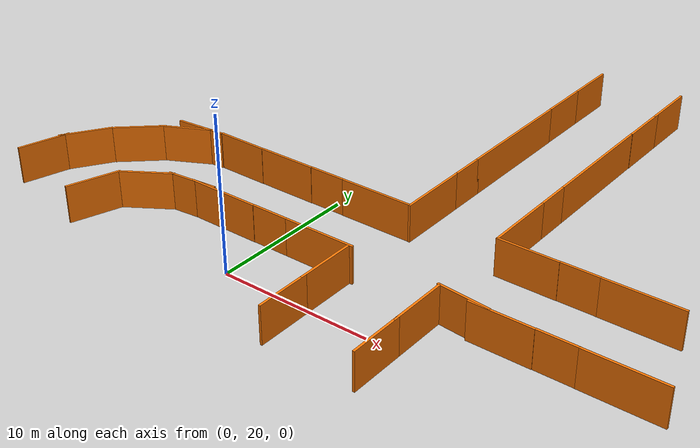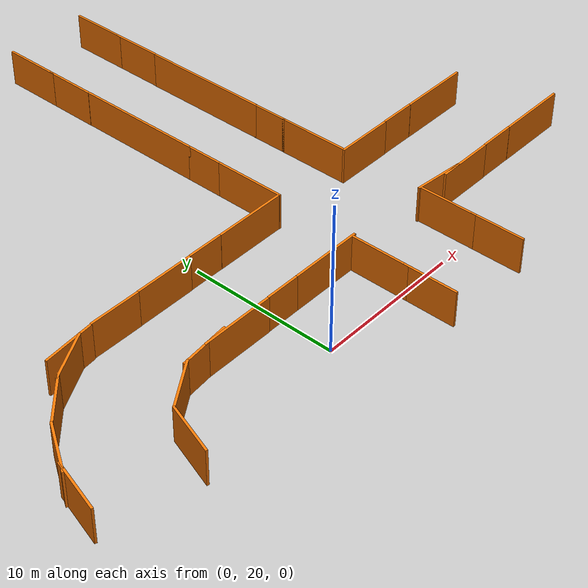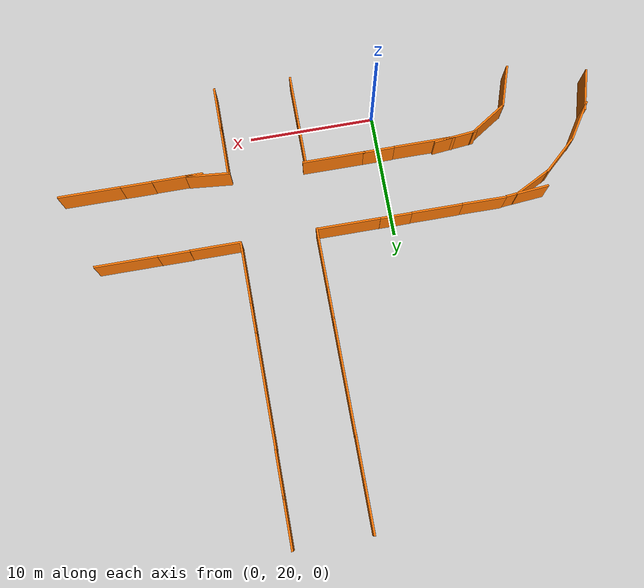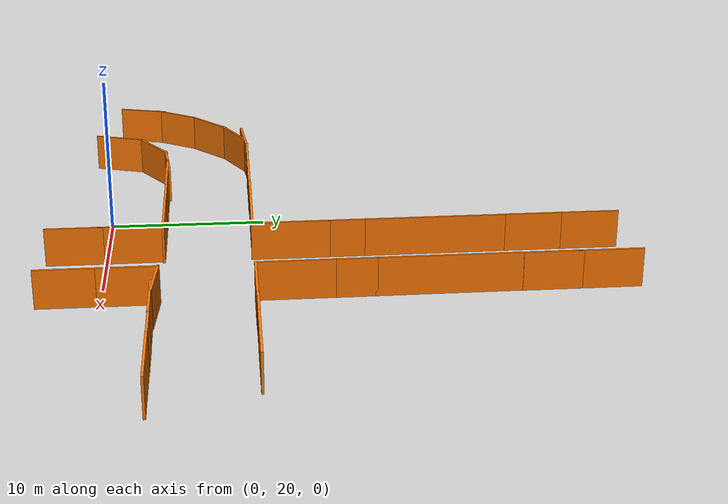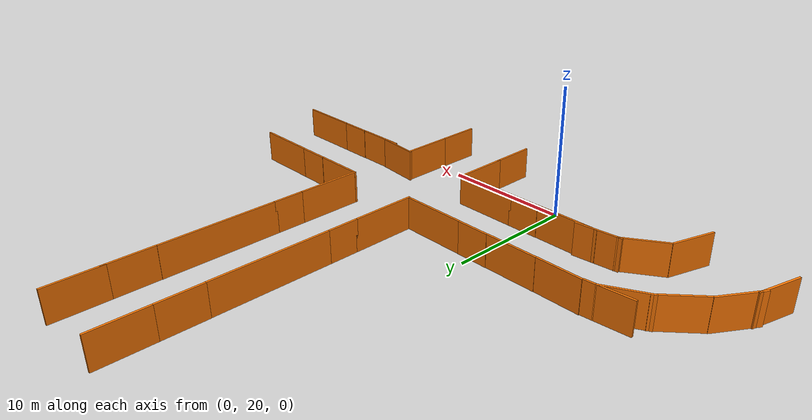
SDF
<sdf version="1.7">
 <world name="cimen_zemin_dunyasi">
  <model name="barier3_clone_clone_clone">
   <link name="Wall_5">
    <pose>-1.71579 -2.31114 0 0 -0 0</pose>
    <inertial>
     <inertia><ixx>0</ixx><ixy>0</ixy><ixz>0</ixz><iyy>0</iyy><iyz>0</iyz><izz>0</izz></inertia>
     <mass>0</mass>
    </inertial>
    <visual name="Wall_5_Visual">
     <pose>0 0 1.25 0 -0 0</pose>
     <geometry><box><size>4.94626 0.15 2.5</size></box></geometry>
     <material>
      <script><uri>file://media/materials/scripts/gazebo.material</uri><name>Gazebo/Grey</name></script>
      <ambient>0.996078 0.47451 0.0196078 1</ambient>
      <shader type="pixel"/>
     </material>
     <meta><layer>0</layer></meta>
    </visual>
    <collision name="Wall_5_Collision">
     <pose>0 0 1.25 0 -0 0</pose>
     <geometry><box><size>4.94626 0.15 2.5</size></box></geometry>
     <surface>
      <friction>
       <ode><mu>1</mu><mu2>1</mu2><fdir1>0 0 0</fdir1><slip1>0</slip1><slip2>0</slip2></ode>
       <torsional>
        <coefficient>1</coefficient>
        <patch_radius>0</patch_radius>
        <surface_radius>0</surface_radius>
        <use_patch_radius>1</use_patch_radius>
        <ode><slip>0</slip></ode>
       </torsional>
      </friction>
      <bounce><restitution_coefficient>0</restitution_coefficient><threshold>1e+06</threshold></bounce>
      <contact>
       <collide_without_contact>0</collide_without_contact>
       <collide_without_contact_bitmask>1</collide_without_contact_bitmask>
       <collide_bitmask>1</collide_bitmask>
       <ode>
        <soft_cfm>0</soft_cfm>
        <soft_erp>0.2</soft_erp>
        <kp>1e+13</kp>
        <kd>1</kd>
        <max_vel>0.01</max_vel>
        <min_depth>0</min_depth>
       </ode>
       <bullet>
        <split_impulse>1</split_impulse>
        <split_impulse_penetration_threshold>-0.01</split_impulse_penetration_threshold>
        <soft_cfm>0</soft_cfm>
        <soft_erp>0.2</soft_erp>
        <kp>1e+13</kp>
        <kd>1</kd>
       </bullet>
      </contact>
     </surface>
    </collision>
   </link>
   <link name="Wall_7">
    <pose>2 -2.29057 0 0 -0 0</pose>
    <visual name="Wall_7_Visual">
     <pose>0 0 1.25 0 -0 0</pose>
     <geometry><box><size>2.5 0.15 2.5</size></box></geometry>
     <material>
      <script><uri>file://media/materials/scripts/gazebo.material</uri><name>Gazebo/Grey</name></script>
      <ambient>0.996078 0.47451 0.0196078 1</ambient>
      <shader type="pixel"/>
     </material>
     <meta><layer>0</layer></meta>
    </visual>
    <collision name="Wall_7_Collision">
     <pose>0 0 1.25 0 -0 0</pose>
     <geometry><box><size>2.5 0.15 2.5</size></box></geometry>
     <surface>
      <friction>
       <ode><mu>1</mu><mu2>1</mu2><fdir1>0 0 0</fdir1><slip1>0</slip1><slip2>0</slip2></ode>
       <torsional>
        <coefficient>1</coefficient>
        <patch_radius>0</patch_radius>
        <surface_radius>0</surface_radius>
        <use_patch_radius>1</use_patch_radius>
        <ode><slip>0</slip></ode>
       </torsional>
      </friction>
      <bounce><restitution_coefficient>0</restitution_coefficient><threshold>1e+06</threshold></bounce>
      <contact>
       <collide_without_contact>0</collide_without_contact>
       <collide_without_contact_bitmask>1</collide_without_contact_bitmask>
       <collide_bitmask>1</collide_bitmask>
       <ode>
        <soft_cfm>0</soft_cfm>
        <soft_erp>0.2</soft_erp>
        <kp>1e+13</kp>
        <kd>1</kd>
        <max_vel>0.01</max_vel>
        <min_depth>0</min_depth>
       </ode>
       <bullet>
        <split_impulse>1</split_impulse>
        <split_impulse_penetration_threshold>-0.01</split_impulse_penetration_threshold>
        <soft_cfm>0</soft_cfm>
        <soft_erp>0.2</soft_erp>
        <kp>1e+13</kp>
        <kd>1</kd>
       </bullet>
      </contact>
     </surface>
    </collision>
   </link>
   <link name="Wall_9">
    <pose>5.6 -2.29057 0 0 -0 0</pose>
    <visual name="Wall_9_Visual">
     <pose>0 0 1.25 0 -0 0</pose>
     <geometry><box><size>5 0.15 2.5</size></box></geometry>
     <material>
      <script><uri>file://media/materials/scripts/gazebo.material</uri><name>Gazebo/Grey</name></script>
      <ambient>0.996078 0.47451 0.0196078 1</ambient>
      <shader type="pixel"/>
     </material>
     <meta><layer>0</layer></meta>
    </visual>
    <collision name="Wall_9_Collision">
     <pose>0 0 1.25 0 -0 0</pose>
     <geometry><box><size>5 0.15 2.5</size></box></geometry>
     <surface>
      <friction>
       <ode><mu>1</mu><mu2>1</mu2><fdir1>0 0 0</fdir1><slip1>0</slip1><slip2>0</slip2></ode>
       <torsional>
        <coefficient>1</coefficient>
        <patch_radius>0</patch_radius>
        <surface_radius>0</surface_radius>
        <use_patch_radius>1</use_patch_radius>
        <ode><slip>0</slip></ode>
       </torsional>
      </friction>
      <bounce><restitution_coefficient>0</restitution_coefficient><threshold>1e+06</threshold></bounce>
      <contact>
       <collide_without_contact>0</collide_without_contact>
       <collide_without_contact_bitmask>1</collide_without_contact_bitmask>
       <collide_bitmask>1</collide_bitmask>
       <ode>
        <soft_cfm>0</soft_cfm>
        <soft_erp>0.2</soft_erp>
        <kp>1e+13</kp>
        <kd>1</kd>
        <max_vel>0.01</max_vel>
        <min_depth>0</min_depth>
       </ode>
       <bullet>
        <split_impulse>1</split_impulse>
        <split_impulse_penetration_threshold>-0.01</split_impulse_penetration_threshold>
        <soft_cfm>0</soft_cfm>
        <soft_erp>0.2</soft_erp>
        <kp>1e+13</kp>
        <kd>1</kd>
       </bullet>
      </contact>
     </surface>
    </collision>
   </link>
   <static>1</static>
   <pose>-1.81563 25.8917 0 0 -0 0</pose>
  </model>
  <model name="barrier2">
   <pose>-10.2583 29.644 0 0 -0 0.479879</pose>
   <link name="Wall_3">
    <collision name="Wall_3_Collision">
     <geometry><box><size>3.5 0.15 2.5</size></box></geometry>
     <pose>0 0 1.25 0 -0 0</pose>
    </collision>
    <visual name="Wall_3_Visual">
     <pose>0 0 1.25 0 -0 0</pose>
     <geometry><box><size>3.5 0.15 2.5</size></box></geometry>
     <material>
      <script><uri>file://media/materials/scripts/gazebo.material</uri><name>Gazebo/Grey</name></script>
      <ambient>0.996078 0.47451 0.0196078 1</ambient>
     </material>
     <meta><layer>0</layer></meta>
    </visual>
    <pose>-1.55327 -0.720218 0 0 -0 0</pose>
   </link>
   <static>1</static>
  </model>
  <model name="barrier2_clone">
   <pose>-13.1416 28.1133 0 0 -0 0.741197</pose>
   <link name="Wall_3">
    <collision name="Wall_3_Collision">
     <geometry><box><size>3.5 0.15 2.5</size></box></geometry>
     <pose>0 0 1.25 0 -0 0</pose>
    </collision>
    <visual name="Wall_3_Visual">
     <pose>0 0 1.25 0 -0 0</pose>
     <geometry><box><size>3.5 0.15 2.5</size></box></geometry>
     <material>
      <script><uri>file://media/materials/scripts/gazebo.material</uri><name>Gazebo/Grey</name></script>
      <ambient>0.996078 0.47451 0.0196078 1</ambient>
     </material>
     <meta><layer>0</layer></meta>
    </visual>
    <pose>-1.55327 -0.720218 0 0 -0 0</pose>
   </link>
   <static>1</static>
  </model>
  <model name="barrier2_clone_clone">
   <pose>-15.814 25.6119 0 0 -0 1.00081</pose>
   <link name="Wall_3">
    <collision name="Wall_3_Collision">
     <geometry><box><size>3.5 0.15 2.5</size></box></geometry>
     <pose>0 0 1.25 0 -0 0</pose>
    </collision>
    <visual name="Wall_3_Visual">
     <pose>0 0 1.25 0 -0 0</pose>
     <geometry><box><size>3.5 0.15 2.5</size></box></geometry>
     <material>
      <script><uri>file://media/materials/scripts/gazebo.material</uri><name>Gazebo/Grey</name></script>
      <ambient>0.996078 0.47451 0.0196078 1</ambient>
     </material>
     <meta><layer>0</layer></meta>
    </visual>
    <pose>-1.55327 -0.720218 0 0 -0 0</pose>
   </link>
   <static>1</static>
  </model>
  <model name="barrier2_clone_0">
   <pose>-4.58312 24.4241 0 0 -0 0.100794</pose>
   <link name="Wall_3">
    <collision name="Wall_3_Collision">
     <geometry><box><size>3.5 0.15 2.5</size></box></geometry>
     <pose>0 0 1.25 0 -0 0</pose>
    </collision>
    <visual name="Wall_3_Visual">
     <pose>0 0 1.25 0 -0 0</pose>
     <geometry><box><size>3.5 0.15 2.5</size></box></geometry>
     <material>
      <script><uri>file://media/materials/scripts/gazebo.material</uri><name>Gazebo/Grey</name></script>
      <ambient>0.996078 0.47451 0.0196078 1</ambient>
     </material>
     <meta><layer>0</layer></meta>
    </visual>
    <pose>-1.55327 -0.720218 0 0 -0 0</pose>
   </link>
   <static>1</static>
  </model>
  <model name="barrier2_clone_0_clone">
   <pose>-7.9744 23.9611 0 0 -0 0.576446</pose>
   <link name="Wall_3">
    <collision name="Wall_3_Collision">
     <geometry><box><size>3.5 0.15 2.5</size></box></geometry>
     <pose>0 0 1.25 0 -0 0</pose>
    </collision>
    <visual name="Wall_3_Visual">
     <pose>0 0 1.25 0 -0 0</pose>
     <geometry><box><size>3.5 0.15 2.5</size></box></geometry>
     <material>
      <script><uri>file://media/materials/scripts/gazebo.material</uri><name>Gazebo/Grey</name></script>
      <ambient>0.996078 0.47451 0.0196078 1</ambient>
     </material>
     <meta><layer>0</layer></meta>
    </visual>
    <pose>-1.55327 -0.720218 0 0 -0 0</pose>
   </link>
   <static>1</static>
  </model>
  <model name="barrier2_clone_0_clone_clone">
   <pose>-11.0573 21.664 0 0 -0 1.25855</pose>
   <link name="Wall_3">
    <collision name="Wall_3_Collision">
     <geometry><box><size>3.5 0.15 2.5</size></box></geometry>
     <pose>0 0 1.25 0 -0 0</pose>
    </collision>
    <visual name="Wall_3_Visual">
     <pose>0 0 1.25 0 -0 0</pose>
     <geometry><box><size>3.5 0.15 2.5</size></box></geometry>
     <material>
      <script><uri>file://media/materials/scripts/gazebo.material</uri><name>Gazebo/Grey</name></script>
      <ambient>0.996078 0.47451 0.0196078 1</ambient>
     </material>
     <meta><layer>0</layer></meta>
    </visual>
    <pose>-1.55327 -0.720218 0 0 -0 0</pose>
   </link>
   <static>1</static>
  </model>
  <model name="barrier2_clone_clone_clone">
   <pose>-17.4205 23.1156 0 0 -0 1.30186</pose>
   <link name="Wall_3">
    <collision name="Wall_3_Collision">
     <geometry><box><size>3.5 0.15 2.5</size></box></geometry>
     <pose>0 0 1.25 0 -0 0</pose>
    </collision>
    <visual name="Wall_3_Visual">
     <pose>0 0 1.25 0 -0 0</pose>
     <geometry><box><size>3.5 0.15 2.5</size></box></geometry>
     <material>
      <script><uri>file://media/materials/scripts/gazebo.material</uri><name>Gazebo/Grey</name></script>
      <ambient>0.996078 0.47451 0.0196078 1</ambient>
     </material>
     <meta><layer>0</layer></meta>
    </visual>
    <pose>-1.55327 -0.720218 0 0 -0 0</pose>
   </link>
   <static>1</static>
  </model>
  <model name="barier3_clone_clone_clone_clone_0_clone_clone_0_clone_clone_clone">
   <link name="Wall_5">
    <pose>-1.14926 -2.31114 0 0 -0 0</pose>
    <inertial>
     <inertia><ixx>0</ixx><ixy>0</ixy><ixz>0</ixz><iyy>0</iyy><iyz>0</iyz><izz>0</izz></inertia>
     <mass>0</mass>
    </inertial>
    <visual name="Wall_5_Visual">
     <pose>0 0 1.25 0 -0 0</pose>
     <geometry><box><size>4.04839 0.15 2.5</size></box></geometry>
     <material>
      <script><uri>file://media/materials/scripts/gazebo.material</uri><name>Gazebo/Grey</name></script>
      <ambient>0.996078 0.47451 0.0196078 1</ambient>
      <shader type="pixel"/>
     </material>
     <meta><layer>0</layer></meta>
    </visual>
    <collision name="Wall_5_Collision">
     <pose>0 0 1.25 0 -0 0</pose>
     <geometry><box><size>4.04839 0.15 2.5</size></box></geometry>
     <surface>
      <friction>
       <ode><mu>1</mu><mu2>1</mu2><fdir1>0 0 0</fdir1><slip1>0</slip1><slip2>0</slip2></ode>
       <torsional>
        <coefficient>1</coefficient>
        <patch_radius>0</patch_radius>
        <surface_radius>0</surface_radius>
        <use_patch_radius>1</use_patch_radius>
        <ode><slip>0</slip></ode>
       </torsional>
      </friction>
      <bounce><restitution_coefficient>0</restitution_coefficient><threshold>1e+06</threshold></bounce>
      <contact>
       <collide_without_contact>0</collide_without_contact>
       <collide_without_contact_bitmask>1</collide_without_contact_bitmask>
       <collide_bitmask>1</collide_bitmask>
       <ode>
        <soft_cfm>0</soft_cfm>
        <soft_erp>0.2</soft_erp>
        <kp>1e+13</kp>
        <kd>1</kd>
        <max_vel>0.01</max_vel>
        <min_depth>0</min_depth>
       </ode>
       <bullet>
        <split_impulse>1</split_impulse>
        <split_impulse_penetration_threshold>-0.01</split_impulse_penetration_threshold>
        <soft_cfm>0</soft_cfm>
        <soft_erp>0.2</soft_erp>
        <kp>1e+13</kp>
        <kd>1</kd>
       </bullet>
      </contact>
     </surface>
    </collision>
   </link>
   <link name="Wall_9">
    <pose>2.34493 -2.31065 0 0 -0 0</pose>
    <inertial>
     <inertia><ixx>0</ixx><ixy>0</ixy><ixz>0</ixz><iyy>0</iyy><iyz>0</iyz><izz>0</izz></inertia>
     <mass>0</mass>
    </inertial>
    <visual name="Wall_9_Visual">
     <pose>0 0 1.25 0 -0 0</pose>
     <geometry><box><size>3.66586 0.15 2.5</size></box></geometry>
     <material>
      <script><uri>file://media/materials/scripts/gazebo.material</uri><name>Gazebo/Grey</name></script>
      <ambient>0.996078 0.47451 0.0196078 1</ambient>
      <shader type="pixel"/>
     </material>
     <meta><layer>0</layer></meta>
    </visual>
    <collision name="Wall_9_Collision">
     <pose>0 0 1.25 0 -0 0</pose>
     <geometry><box><size>3.66586 0.15 2.5</size></box></geometry>
     <surface>
      <friction>
       <ode><mu>1</mu><mu2>1</mu2><fdir1>0 0 0</fdir1><slip1>0</slip1><slip2>0</slip2></ode>
       <torsional>
        <coefficient>1</coefficient>
        <patch_radius>0</patch_radius>
        <surface_radius>0</surface_radius>
        <use_patch_radius>1</use_patch_radius>
        <ode><slip>0</slip></ode>
       </torsional>
      </friction>
      <bounce><restitution_coefficient>0</restitution_coefficient><threshold>1e+06</threshold></bounce>
      <contact>
       <collide_without_contact>0</collide_without_contact>
       <collide_without_contact_bitmask>1</collide_without_contact_bitmask>
       <collide_bitmask>1</collide_bitmask>
       <ode>
        <soft_cfm>0</soft_cfm>
        <soft_erp>0.2</soft_erp>
        <kp>1e+13</kp>
        <kd>1</kd>
        <max_vel>0.01</max_vel>
        <min_depth>0</min_depth>
       </ode>
       <bullet>
        <split_impulse>1</split_impulse>
        <split_impulse_penetration_threshold>-0.01</split_impulse_penetration_threshold>
        <soft_cfm>0</soft_cfm>
        <soft_erp>0.2</soft_erp>
        <kp>1e+13</kp>
        <kd>1</kd>
       </bullet>
      </contact>
     </surface>
    </collision>
   </link>
   <static>1</static>
   <pose>8.35073 20.4081 0 0 0 -1.56598</pose>
  </model>
  <model name="barier3_clone_clone_clone_clone_0_clone_clone_0_clone_clone_clone_clone">
   <link name="Wall_5">
    <pose>-1.14926 -2.31114 0 0 -0 0</pose>
    <inertial>
     <inertia><ixx>0</ixx><ixy>0</ixy><ixz>0</ixz><iyy>0</iyy><iyz>0</iyz><izz>0</izz></inertia>
     <mass>0</mass>
    </inertial>
    <visual name="Wall_5_Visual">
     <pose>0 0 1.25 0 -0 0</pose>
     <geometry><box><size>4.04839 0.15 2.5</size></box></geometry>
     <material>
      <script><uri>file://media/materials/scripts/gazebo.material</uri><name>Gazebo/Grey</name></script>
      <ambient>0.996078 0.47451 0.0196078 1</ambient>
      <shader type="pixel"/>
     </material>
     <meta><layer>0</layer></meta>
    </visual>
    <collision name="Wall_5_Collision">
     <pose>0 0 1.25 0 -0 0</pose>
     <geometry><box><size>4.04839 0.15 2.5</size></box></geometry>
     <surface>
      <friction>
       <ode><mu>1</mu><mu2>1</mu2><fdir1>0 0 0</fdir1><slip1>0</slip1><slip2>0</slip2></ode>
       <torsional>
        <coefficient>1</coefficient>
        <patch_radius>0</patch_radius>
        <surface_radius>0</surface_radius>
        <use_patch_radius>1</use_patch_radius>
        <ode><slip>0</slip></ode>
       </torsional>
      </friction>
      <bounce><restitution_coefficient>0</restitution_coefficient><threshold>1e+06</threshold></bounce>
      <contact>
       <collide_without_contact>0</collide_without_contact>
       <collide_without_contact_bitmask>1</collide_without_contact_bitmask>
       <collide_bitmask>1</collide_bitmask>
       <ode>
        <soft_cfm>0</soft_cfm>
        <soft_erp>0.2</soft_erp>
        <kp>1e+13</kp>
        <kd>1</kd>
        <max_vel>0.01</max_vel>
        <min_depth>0</min_depth>
       </ode>
       <bullet>
        <split_impulse>1</split_impulse>
        <split_impulse_penetration_threshold>-0.01</split_impulse_penetration_threshold>
        <soft_cfm>0</soft_cfm>
        <soft_erp>0.2</soft_erp>
        <kp>1e+13</kp>
        <kd>1</kd>
       </bullet>
      </contact>
     </surface>
    </collision>
   </link>
   <link name="Wall_9">
    <pose>2.34493 -2.31065 0 0 -0 0</pose>
    <inertial>
     <inertia><ixx>0</ixx><ixy>0</ixy><ixz>0</ixz><iyy>0</iyy><iyz>0</iyz><izz>0</izz></inertia>
     <mass>0</mass>
    </inertial>
    <visual name="Wall_9_Visual">
     <pose>0 0 1.25 0 -0 0</pose>
     <geometry><box><size>3.66586 0.15 2.5</size></box></geometry>
     <material>
      <script><uri>file://media/materials/scripts/gazebo.material</uri><name>Gazebo/Grey</name></script>
      <ambient>0.996078 0.47451 0.0196078 1</ambient>
      <shader type="pixel"/>
     </material>
     <meta><layer>0</layer></meta>
    </visual>
    <collision name="Wall_9_Collision">
     <pose>0 0 1.25 0 -0 0</pose>
     <geometry><box><size>3.66586 0.15 2.5</size></box></geometry>
     <surface>
      <friction>
       <ode><mu>1</mu><mu2>1</mu2><fdir1>0 0 0</fdir1><slip1>0</slip1><slip2>0</slip2></ode>
       <torsional>
        <coefficient>1</coefficient>
        <patch_radius>0</patch_radius>
        <surface_radius>0</surface_radius>
        <use_patch_radius>1</use_patch_radius>
        <ode><slip>0</slip></ode>
       </torsional>
      </friction>
      <bounce><restitution_coefficient>0</restitution_coefficient><threshold>1e+06</threshold></bounce>
      <contact>
       <collide_without_contact>0</collide_without_contact>
       <collide_without_contact_bitmask>1</collide_without_contact_bitmask>
       <collide_bitmask>1</collide_bitmask>
       <ode>
        <soft_cfm>0</soft_cfm>
        <soft_erp>0.2</soft_erp>
        <kp>1e+13</kp>
        <kd>1</kd>
        <max_vel>0.01</max_vel>
        <min_depth>0</min_depth>
       </ode>
       <bullet>
        <split_impulse>1</split_impulse>
        <split_impulse_penetration_threshold>-0.01</split_impulse_penetration_threshold>
        <soft_cfm>0</soft_cfm>
        <soft_erp>0.2</soft_erp>
        <kp>1e+13</kp>
        <kd>1</kd>
       </bullet>
      </contact>
     </surface>
    </collision>
   </link>
   <static>1</static>
   <pose>14.516 20.3467 0 0 0 -1.56598</pose>
  </model>
  <model name="barier3_clone_clone_clone_clone_0_clone_clone_clone_1">
   <link name="Wall_5">
    <pose>-1.25417 -2.31114 0 0 -0 0</pose>
    <inertial>
     <inertia><ixx>0</ixx><ixy>0</ixy><ixz>0</ixz><iyy>0</iyy><iyz>0</iyz><izz>0</izz></inertia>
     <mass>0</mass>
    </inertial>
    <visual name="Wall_5_Visual">
     <pose>0 0 1.25 0 -0 0</pose>
     <geometry><box><size>4.04839 0.15 2.5</size></box></geometry>
     <material>
      <script><uri>file://media/materials/scripts/gazebo.material</uri><name>Gazebo/Grey</name></script>
      <ambient>0.996078 0.47451 0.0196078 1</ambient>
      <shader type="pixel"/>
     </material>
     <meta><layer>0</layer></meta>
    </visual>
    <collision name="Wall_5_Collision">
     <pose>0 0 1.25 0 -0 0</pose>
     <geometry><box><size>4.04839 0.15 2.5</size></box></geometry>
     <surface>
      <friction>
       <ode><mu>1</mu><mu2>1</mu2><fdir1>0 0 0</fdir1><slip1>0</slip1><slip2>0</slip2></ode>
       <torsional>
        <coefficient>1</coefficient>
        <patch_radius>0</patch_radius>
        <surface_radius>0</surface_radius>
        <use_patch_radius>1</use_patch_radius>
        <ode><slip>0</slip></ode>
       </torsional>
      </friction>
      <bounce><restitution_coefficient>0</restitution_coefficient><threshold>1e+06</threshold></bounce>
      <contact>
       <collide_without_contact>0</collide_without_contact>
       <collide_without_contact_bitmask>1</collide_without_contact_bitmask>
       <collide_bitmask>1</collide_bitmask>
       <ode>
        <soft_cfm>0</soft_cfm>
        <soft_erp>0.2</soft_erp>
        <kp>1e+13</kp>
        <kd>1</kd>
        <max_vel>0.01</max_vel>
        <min_depth>0</min_depth>
       </ode>
       <bullet>
        <split_impulse>1</split_impulse>
        <split_impulse_penetration_threshold>-0.01</split_impulse_penetration_threshold>
        <soft_cfm>0</soft_cfm>
        <soft_erp>0.2</soft_erp>
        <kp>1e+13</kp>
        <kd>1</kd>
       </bullet>
      </contact>
     </surface>
    </collision>
   </link>
   <link name="Wall_7">
    <pose>2 -2.29057 0 0 -0 0</pose>
    <visual name="Wall_7_Visual">
     <pose>0 0 1.25 0 -0 0</pose>
     <geometry><box><size>2.5 0.15 2.5</size></box></geometry>
     <material>
      <script><uri>file://media/materials/scripts/gazebo.material</uri><name>Gazebo/Grey</name></script>
      <ambient>0.996078 0.47451 0.0196078 1</ambient>
      <shader type="pixel"/>
     </material>
     <meta><layer>0</layer></meta>
    </visual>
    <collision name="Wall_7_Collision">
     <pose>0 0 1.25 0 -0 0</pose>
     <geometry><box><size>2.5 0.15 2.5</size></box></geometry>
     <surface>
      <friction>
       <ode><mu>1</mu><mu2>1</mu2><fdir1>0 0 0</fdir1><slip1>0</slip1><slip2>0</slip2></ode>
       <torsional>
        <coefficient>1</coefficient>
        <patch_radius>0</patch_radius>
        <surface_radius>0</surface_radius>
        <use_patch_radius>1</use_patch_radius>
        <ode><slip>0</slip></ode>
       </torsional>
      </friction>
      <bounce><restitution_coefficient>0</restitution_coefficient><threshold>1e+06</threshold></bounce>
      <contact>
       <collide_without_contact>0</collide_without_contact>
       <collide_without_contact_bitmask>1</collide_without_contact_bitmask>
       <collide_bitmask>1</collide_bitmask>
       <ode>
        <soft_cfm>0</soft_cfm>
        <soft_erp>0.2</soft_erp>
        <kp>1e+13</kp>
        <kd>1</kd>
        <max_vel>0.01</max_vel>
        <min_depth>0</min_depth>
       </ode>
       <bullet>
        <split_impulse>1</split_impulse>
        <split_impulse_penetration_threshold>-0.01</split_impulse_penetration_threshold>
        <soft_cfm>0</soft_cfm>
        <soft_erp>0.2</soft_erp>
        <kp>1e+13</kp>
        <kd>1</kd>
       </bullet>
      </contact>
     </surface>
    </collision>
   </link>
   <link name="Wall_9">
    <pose>5.71906 -2.30051 0 0 -0 0</pose>
    <inertial>
     <inertia><ixx>0</ixx><ixy>0</ixy><ixz>0</ixz><iyy>0</iyy><iyz>0</iyz><izz>0</izz></inertia>
     <mass>0</mass>
    </inertial>
    <visual name="Wall_9_Visual">
     <pose>0 0 1.25 0 -0 0</pose>
     <geometry><box><size>4.97607 0.15 2.5</size></box></geometry>
     <material>
      <script><uri>file://media/materials/scripts/gazebo.material</uri><name>Gazebo/Grey</name></script>
      <ambient>0.996078 0.47451 0.0196078 1</ambient>
      <shader type="pixel"/>
     </material>
     <meta><layer>0</layer></meta>
    </visual>
    <collision name="Wall_9_Collision">
     <pose>0 0 1.25 0 -0 0</pose>
     <geometry><box><size>4.97607 0.15 2.5</size></box></geometry>
     <surface>
      <friction>
       <ode><mu>1</mu><mu2>1</mu2><fdir1>0 0 0</fdir1><slip1>0</slip1><slip2>0</slip2></ode>
       <torsional>
        <coefficient>1</coefficient>
        <patch_radius>0</patch_radius>
        <surface_radius>0</surface_radius>
        <use_patch_radius>1</use_patch_radius>
        <ode><slip>0</slip></ode>
       </torsional>
      </friction>
      <bounce><restitution_coefficient>0</restitution_coefficient><threshold>1e+06</threshold></bounce>
      <contact>
       <collide_without_contact>0</collide_without_contact>
       <collide_without_contact_bitmask>1</collide_without_contact_bitmask>
       <collide_bitmask>1</collide_bitmask>
       <ode>
        <soft_cfm>0</soft_cfm>
        <soft_erp>0.2</soft_erp>
        <kp>1e+13</kp>
        <kd>1</kd>
        <max_vel>0.01</max_vel>
        <min_depth>0</min_depth>
       </ode>
       <bullet>
        <split_impulse>1</split_impulse>
        <split_impulse_penetration_threshold>-0.01</split_impulse_penetration_threshold>
        <soft_cfm>0</soft_cfm>
        <soft_erp>0.2</soft_erp>
        <kp>1e+13</kp>
        <kd>1</kd>
       </bullet>
      </contact>
     </surface>
    </collision>
   </link>
   <static>1</static>
   <pose>17.4117 25.4574 0 0 -0 0</pose>
  </model>
  <model name="barrier2_clone_clone_0_clone_clone_0">
   <pose>12.1582 22.7629 0 0 -0 3.05009</pose>
   <link name="Wall_3">
    <collision name="Wall_3_Collision">
     <geometry><box><size>3.5 0.15 2.5</size></box></geometry>
     <pose>0 0 1.25 0 -0 0</pose>
    </collision>
    <visual name="Wall_3_Visual">
     <pose>0 0 1.25 0 -0 0</pose>
     <geometry><box><size>3.5 0.15 2.5</size></box></geometry>
     <material>
      <script><uri>file://media/materials/scripts/gazebo.material</uri><name>Gazebo/Grey</name></script>
      <ambient>0.996078 0.47451 0.0196078 1</ambient>
     </material>
     <meta><layer>0</layer></meta>
    </visual>
    <pose>-1.55327 -0.720218 0 0 -0 0</pose>
   </link>
   <static>1</static>
  </model>
  <model name="barier3_clone_clone_clone_clone_0_clone_clone_clone_1_clone_clone_clone_clone">
   <link name="Wall_5">
    <pose>-1.25417 -2.31114 0 0 -0 0</pose>
    <inertial>
     <inertia><ixx>0</ixx><ixy>0</ixy><ixz>0</ixz><iyy>0</iyy><iyz>0</iyz><izz>0</izz></inertia>
     <mass>0</mass>
    </inertial>
    <visual name="Wall_5_Visual">
     <pose>0 0 1.25 0 -0 0</pose>
     <geometry><box><size>4.04839 0.15 2.5</size></box></geometry>
     <material>
      <script><uri>file://media/materials/scripts/gazebo.material</uri><name>Gazebo/Grey</name></script>
      <ambient>0.996078 0.47451 0.0196078 1</ambient>
      <shader type="pixel"/>
     </material>
     <meta><layer>0</layer></meta>
    </visual>
    <collision name="Wall_5_Collision">
     <pose>0 0 1.25 0 -0 0</pose>
     <geometry><box><size>4.04839 0.15 2.5</size></box></geometry>
     <surface>
      <friction>
       <ode><mu>1</mu><mu2>1</mu2><fdir1>0 0 0</fdir1><slip1>0</slip1><slip2>0</slip2></ode>
       <torsional>
        <coefficient>1</coefficient>
        <patch_radius>0</patch_radius>
        <surface_radius>0</surface_radius>
        <use_patch_radius>1</use_patch_radius>
        <ode><slip>0</slip></ode>
       </torsional>
      </friction>
      <bounce><restitution_coefficient>0</restitution_coefficient><threshold>1e+06</threshold></bounce>
      <contact>
       <collide_without_contact>0</collide_without_contact>
       <collide_without_contact_bitmask>1</collide_without_contact_bitmask>
       <collide_bitmask>1</collide_bitmask>
       <ode>
        <soft_cfm>0</soft_cfm>
        <soft_erp>0.2</soft_erp>
        <kp>1e+13</kp>
        <kd>1</kd>
        <max_vel>0.01</max_vel>
        <min_depth>0</min_depth>
       </ode>
       <bullet>
        <split_impulse>1</split_impulse>
        <split_impulse_penetration_threshold>-0.01</split_impulse_penetration_threshold>
        <soft_cfm>0</soft_cfm>
        <soft_erp>0.2</soft_erp>
        <kp>1e+13</kp>
        <kd>1</kd>
       </bullet>
      </contact>
     </surface>
    </collision>
   </link>
   <link name="Wall_7">
    <pose>2 -2.29057 0 0 -0 0</pose>
    <visual name="Wall_7_Visual">
     <pose>0 0 1.25 0 -0 0</pose>
     <geometry><box><size>2.5 0.15 2.5</size></box></geometry>
     <material>
      <script><uri>file://media/materials/scripts/gazebo.material</uri><name>Gazebo/Grey</name></script>
      <ambient>0.996078 0.47451 0.0196078 1</ambient>
      <shader type="pixel"/>
     </material>
     <meta><layer>0</layer></meta>
    </visual>
    <collision name="Wall_7_Collision">
     <pose>0 0 1.25 0 -0 0</pose>
     <geometry><box><size>2.5 0.15 2.5</size></box></geometry>
     <surface>
      <friction>
       <ode><mu>1</mu><mu2>1</mu2><fdir1>0 0 0</fdir1><slip1>0</slip1><slip2>0</slip2></ode>
       <torsional>
        <coefficient>1</coefficient>
        <patch_radius>0</patch_radius>
        <surface_radius>0</surface_radius>
        <use_patch_radius>1</use_patch_radius>
        <ode><slip>0</slip></ode>
       </torsional>
      </friction>
      <bounce><restitution_coefficient>0</restitution_coefficient><threshold>1e+06</threshold></bounce>
      <contact>
       <collide_without_contact>0</collide_without_contact>
       <collide_without_contact_bitmask>1</collide_without_contact_bitmask>
       <collide_bitmask>1</collide_bitmask>
       <ode>
        <soft_cfm>0</soft_cfm>
        <soft_erp>0.2</soft_erp>
        <kp>1e+13</kp>
        <kd>1</kd>
        <max_vel>0.01</max_vel>
        <min_depth>0</min_depth>
       </ode>
       <bullet>
        <split_impulse>1</split_impulse>
        <split_impulse_penetration_threshold>-0.01</split_impulse_penetration_threshold>
        <soft_cfm>0</soft_cfm>
        <soft_erp>0.2</soft_erp>
        <kp>1e+13</kp>
        <kd>1</kd>
       </bullet>
      </contact>
     </surface>
    </collision>
   </link>
   <link name="Wall_9">
    <pose>5.71906 -2.30051 0 0 -0 0</pose>
    <inertial>
     <inertia><ixx>0</ixx><ixy>0</ixy><ixz>0</ixz><iyy>0</iyy><iyz>0</iyz><izz>0</izz></inertia>
     <mass>0</mass>
    </inertial>
    <visual name="Wall_9_Visual">
     <pose>0 0 1.25 0 -0 0</pose>
     <geometry><box><size>4.97607 0.15 2.5</size></box></geometry>
     <material>
      <script><uri>file://media/materials/scripts/gazebo.material</uri><name>Gazebo/Grey</name></script>
      <ambient>0.996078 0.47451 0.0196078 1</ambient>
      <shader type="pixel"/>
     </material>
     <meta><layer>0</layer></meta>
    </visual>
    <collision name="Wall_9_Collision">
     <pose>0 0 1.25 0 -0 0</pose>
     <geometry><box><size>4.97607 0.15 2.5</size></box></geometry>
     <surface>
      <friction>
       <ode><mu>1</mu><mu2>1</mu2><fdir1>0 0 0</fdir1><slip1>0</slip1><slip2>0</slip2></ode>
       <torsional>
        <coefficient>1</coefficient>
        <patch_radius>0</patch_radius>
        <surface_radius>0</surface_radius>
        <use_patch_radius>1</use_patch_radius>
        <ode><slip>0</slip></ode>
       </torsional>
      </friction>
      <bounce><restitution_coefficient>0</restitution_coefficient><threshold>1e+06</threshold></bounce>
      <contact>
       <collide_without_contact>0</collide_without_contact>
       <collide_without_contact_bitmask>1</collide_without_contact_bitmask>
       <collide_bitmask>1</collide_bitmask>
       <ode>
        <soft_cfm>0</soft_cfm>
        <soft_erp>0.2</soft_erp>
        <kp>1e+13</kp>
        <kd>1</kd>
        <max_vel>0.01</max_vel>
        <min_depth>0</min_depth>
       </ode>
       <bullet>
        <split_impulse>1</split_impulse>
        <split_impulse_penetration_threshold>-0.01</split_impulse_penetration_threshold>
        <soft_cfm>0</soft_cfm>
        <soft_erp>0.2</soft_erp>
        <kp>1e+13</kp>
        <kd>1</kd>
       </bullet>
      </contact>
     </surface>
    </collision>
   </link>
   <static>1</static>
   <pose>15.2788 31.5353 0 0 -0 0</pose>
  </model>
  <model name="barier3_clone_clone_0_clone">
   <pose>14.3104 37.2725 0 0 0 -1.56341</pose>
   <link name="Wall_5">
    <collision name="Wall_5_Collision">
     <geometry><box><size>9 0.15 2.5</size></box></geometry>
     <pose>0 0 1.25 0 -0 0</pose>
    </collision>
    <visual name="Wall_5_Visual">
     <pose>0 0 1.25 0 -0 0</pose>
     <geometry><box><size>9 0.15 2.5</size></box></geometry>
     <material>
      <script><uri>file://media/materials/scripts/gazebo.material</uri><name>Gazebo/Grey</name></script>
      <ambient>0.996078 0.47451 0.0196078 1</ambient>
     </material>
     <meta><layer>0</layer></meta>
    </visual>
    <pose>-3.6 -2.29057 0 0 -0 0</pose>
   </link>
   <link name="Wall_7">
    <collision name="Wall_7_Collision">
     <geometry><box><size>2.5 0.15 2.5</size></box></geometry>
     <pose>0 0 1.25 0 -0 0</pose>
    </collision>
    <visual name="Wall_7_Visual">
     <pose>0 0 1.25 0 -0 0</pose>
     <geometry><box><size>2.5 0.15 2.5</size></box></geometry>
     <material>
      <script><uri>file://media/materials/scripts/gazebo.material</uri><name>Gazebo/Grey</name></script>
      <ambient>0.996078 0.47451 0.0196078 1</ambient>
     </material>
     <meta><layer>0</layer></meta>
    </visual>
    <pose>2 -2.29057 0 0 -0 0</pose>
   </link>
   <link name="Wall_9">
    <collision name="Wall_9_Collision">
     <geometry><box><size>5 0.15 2.5</size></box></geometry>
     <pose>0 0 1.25 0 -0 0</pose>
    </collision>
    <visual name="Wall_9_Visual">
     <pose>0 0 1.25 0 -0 0</pose>
     <geometry><box><size>5 0.15 2.5</size></box></geometry>
     <material>
      <script><uri>file://media/materials/scripts/gazebo.material</uri><name>Gazebo/Grey</name></script>
      <ambient>0.996078 0.47451 0.0196078 1</ambient>
     </material>
     <meta><layer>0</layer></meta>
    </visual>
    <pose>5.6 -2.29057 0 0 -0 0</pose>
   </link>
   <static>1</static>
  </model>
  <model name="barier3_clone_clone_0_clone_clone">
   <pose>8.32899 37.2173 0 0 0 -1.56341</pose>
   <link name="Wall_5">
    <collision name="Wall_5_Collision">
     <geometry><box><size>9 0.15 2.5</size></box></geometry>
     <pose>0 0 1.25 0 -0 0</pose>
    </collision>
    <visual name="Wall_5_Visual">
     <pose>0 0 1.25 0 -0 0</pose>
     <geometry><box><size>9 0.15 2.5</size></box></geometry>
     <material>
      <script><uri>file://media/materials/scripts/gazebo.material</uri><name>Gazebo/Grey</name></script>
      <ambient>0.996078 0.47451 0.0196078 1</ambient>
     </material>
     <meta><layer>0</layer></meta>
    </visual>
    <pose>-3.6 -2.29057 0 0 -0 0</pose>
   </link>
   <link name="Wall_7">
    <collision name="Wall_7_Collision">
     <geometry><box><size>2.5 0.15 2.5</size></box></geometry>
     <pose>0 0 1.25 0 -0 0</pose>
    </collision>
    <visual name="Wall_7_Visual">
     <pose>0 0 1.25 0 -0 0</pose>
     <geometry><box><size>2.5 0.15 2.5</size></box></geometry>
     <material>
      <script><uri>file://media/materials/scripts/gazebo.material</uri><name>Gazebo/Grey</name></script>
      <ambient>0.996078 0.47451 0.0196078 1</ambient>
     </material>
     <meta><layer>0</layer></meta>
    </visual>
    <pose>2 -2.29057 0 0 -0 0</pose>
   </link>
   <link name="Wall_9">
    <collision name="Wall_9_Collision">
     <geometry><box><size>5 0.15 2.5</size></box></geometry>
     <pose>0 0 1.25 0 -0 0</pose>
    </collision>
    <visual name="Wall_9_Visual">
     <pose>0 0 1.25 0 -0 0</pose>
     <geometry><box><size>5 0.15 2.5</size></box></geometry>
     <material>
      <script><uri>file://media/materials/scripts/gazebo.material</uri><name>Gazebo/Grey</name></script>
      <ambient>0.996078 0.47451 0.0196078 1</ambient>
     </material>
     <meta><layer>0</layer></meta>
    </visual>
    <pose>5.6 -2.29057 0 0 -0 0</pose>
   </link>
   <static>1</static>
  </model>
  <model name="barier3_clone_clone_clone_clone_0_clone_clone_clone_1_clone_clone_clone_clone_clone">
   <link name="Wall_5">
    <pose>-1.25417 -2.31114 0 0 -0 0</pose>
    <inertial>
     <inertia><ixx>0</ixx><ixy>0</ixy><ixz>0</ixz><iyy>0</iyy><iyz>0</iyz><izz>0</izz></inertia>
     <mass>0</mass>
    </inertial>
    <visual name="Wall_5_Visual">
     <pose>0 0 1.25 0 -0 0</pose>
     <geometry><box><size>4.04839 0.15 2.5</size></box></geometry>
     <material>
      <script><uri>file://media/materials/scripts/gazebo.material</uri><name>Gazebo/Grey</name></script>
      <ambient>0.996078 0.47451 0.0196078 1</ambient>
      <shader type="pixel"/>
     </material>
     <meta><layer>0</layer></meta>
    </visual>
    <collision name="Wall_5_Collision">
     <pose>0 0 1.25 0 -0 0</pose>
     <geometry><box><size>4.04839 0.15 2.5</size></box></geometry>
     <surface>
      <friction>
       <ode><mu>1</mu><mu2>1</mu2><fdir1>0 0 0</fdir1><slip1>0</slip1><slip2>0</slip2></ode>
       <torsional>
        <coefficient>1</coefficient>
        <patch_radius>0</patch_radius>
        <surface_radius>0</surface_radius>
        <use_patch_radius>1</use_patch_radius>
        <ode><slip>0</slip></ode>
       </torsional>
      </friction>
      <bounce><restitution_coefficient>0</restitution_coefficient><threshold>1e+06</threshold></bounce>
      <contact>
       <collide_without_contact>0</collide_without_contact>
       <collide_without_contact_bitmask>1</collide_without_contact_bitmask>
       <collide_bitmask>1</collide_bitmask>
       <ode>
        <soft_cfm>0</soft_cfm>
        <soft_erp>0.2</soft_erp>
        <kp>1e+13</kp>
        <kd>1</kd>
        <max_vel>0.01</max_vel>
        <min_depth>0</min_depth>
       </ode>
       <bullet>
        <split_impulse>1</split_impulse>
        <split_impulse_penetration_threshold>-0.01</split_impulse_penetration_threshold>
        <soft_cfm>0</soft_cfm>
        <soft_erp>0.2</soft_erp>
        <kp>1e+13</kp>
        <kd>1</kd>
       </bullet>
      </contact>
     </surface>
    </collision>
   </link>
   <link name="Wall_7">
    <pose>2 -2.29057 0 0 -0 0</pose>
    <visual name="Wall_7_Visual">
     <pose>0 0 1.25 0 -0 0</pose>
     <geometry><box><size>2.5 0.15 2.5</size></box></geometry>
     <material>
      <script><uri>file://media/materials/scripts/gazebo.material</uri><name>Gazebo/Grey</name></script>
      <ambient>0.996078 0.47451 0.0196078 1</ambient>
      <shader type="pixel"/>
     </material>
     <meta><layer>0</layer></meta>
    </visual>
    <collision name="Wall_7_Collision">
     <pose>0 0 1.25 0 -0 0</pose>
     <geometry><box><size>2.5 0.15 2.5</size></box></geometry>
     <surface>
      <friction>
       <ode><mu>1</mu><mu2>1</mu2><fdir1>0 0 0</fdir1><slip1>0</slip1><slip2>0</slip2></ode>
       <torsional>
        <coefficient>1</coefficient>
        <patch_radius>0</patch_radius>
        <surface_radius>0</surface_radius>
        <use_patch_radius>1</use_patch_radius>
        <ode><slip>0</slip></ode>
       </torsional>
      </friction>
      <bounce><restitution_coefficient>0</restitution_coefficient><threshold>1e+06</threshold></bounce>
      <contact>
       <collide_without_contact>0</collide_without_contact>
       <collide_without_contact_bitmask>1</collide_without_contact_bitmask>
       <collide_bitmask>1</collide_bitmask>
       <ode>
        <soft_cfm>0</soft_cfm>
        <soft_erp>0.2</soft_erp>
        <kp>1e+13</kp>
        <kd>1</kd>
        <max_vel>0.01</max_vel>
        <min_depth>0</min_depth>
       </ode>
       <bullet>
        <split_impulse>1</split_impulse>
        <split_impulse_penetration_threshold>-0.01</split_impulse_penetration_threshold>
        <soft_cfm>0</soft_cfm>
        <soft_erp>0.2</soft_erp>
        <kp>1e+13</kp>
        <kd>1</kd>
       </bullet>
      </contact>
     </surface>
    </collision>
   </link>
   <link name="Wall_9">
    <pose>5.71906 -2.30051 0 0 -0 0</pose>
    <inertial>
     <inertia><ixx>0</ixx><ixy>0</ixy><ixz>0</ixz><iyy>0</iyy><iyz>0</iyz><izz>0</izz></inertia>
     <mass>0</mass>
    </inertial>
    <visual name="Wall_9_Visual">
     <pose>0 0 1.25 0 -0 0</pose>
     <geometry><box><size>4.97607 0.15 2.5</size></box></geometry>
     <material>
      <script><uri>file://media/materials/scripts/gazebo.material</uri><name>Gazebo/Grey</name></script>
      <ambient>0.996078 0.47451 0.0196078 1</ambient>
      <shader type="pixel"/>
     </material>
     <meta><layer>0</layer></meta>
    </visual>
    <collision name="Wall_9_Collision">
     <pose>0 0 1.25 0 -0 0</pose>
     <geometry><box><size>4.97607 0.15 2.5</size></box></geometry>
     <surface>
      <friction>
       <ode><mu>1</mu><mu2>1</mu2><fdir1>0 0 0</fdir1><slip1>0</slip1><slip2>0</slip2></ode>
       <torsional>
        <coefficient>1</coefficient>
        <patch_radius>0</patch_radius>
        <surface_radius>0</surface_radius>
        <use_patch_radius>1</use_patch_radius>
        <ode><slip>0</slip></ode>
       </torsional>
      </friction>
      <bounce><restitution_coefficient>0</restitution_coefficient><threshold>1e+06</threshold></bounce>
      <contact>
       <collide_without_contact>0</collide_without_contact>
       <collide_without_contact_bitmask>1</collide_without_contact_bitmask>
       <collide_bitmask>1</collide_bitmask>
       <ode>
        <soft_cfm>0</soft_cfm>
        <soft_erp>0.2</soft_erp>
        <kp>1e+13</kp>
        <kd>1</kd>
        <max_vel>0.01</max_vel>
        <min_depth>0</min_depth>
       </ode>
       <bullet>
        <split_impulse>1</split_impulse>
        <split_impulse_penetration_threshold>-0.01</split_impulse_penetration_threshold>
        <soft_cfm>0</soft_cfm>
        <soft_erp>0.2</soft_erp>
        <kp>1e+13</kp>
        <kd>1</kd>
       </bullet>
      </contact>
     </surface>
    </collision>
   </link>
   <static>1</static>
   <pose>-2.14638 31.4904 0 0 -0 0</pose>
  </model>
  <model name="barrier2_clone_0_clone_1">
   <pose>-5.59904 29.886 0 0 0 -0.006068</pose>
   <link name="Wall_3">
    <collision name="Wall_3_Collision">
     <geometry><box><size>3.5 0.15 2.5</size></box></geometry>
     <pose>0 0 1.25 0 -0 0</pose>
    </collision>
    <visual name="Wall_3_Visual">
     <pose>0 0 1.25 0 -0 0</pose>
     <geometry><box><size>3.5 0.15 2.5</size></box></geometry>
     <material>
      <script><uri>file://media/materials/scripts/gazebo.material</uri><name>Gazebo/Grey</name></script>
      <ambient>0.996078 0.47451 0.0196078 1</ambient>
     </material>
     <meta><layer>0</layer></meta>
    </visual>
    <pose>-1.55327 -0.720218 0 0 -0 0</pose>
   </link>
   <static>1</static>
  </model>
  <model name="barrier2_clone_1">
   <pose>-9.14927 29.8413 0 0 -0 0.088269</pose>
   <link name="Wall_3">
    <collision name="Wall_3_Collision">
     <geometry><box><size>3.5 0.15 2.5</size></box></geometry>
     <pose>0 0 1.25 0 -0 0</pose>
    </collision>
    <visual name="Wall_3_Visual">
     <pose>0 0 1.25 0 -0 0</pose>
     <geometry><box><size>3.5 0.15 2.5</size></box></geometry>
     <material>
      <script><uri>file://media/materials/scripts/gazebo.material</uri><name>Gazebo/Grey</name></script>
      <ambient>0.996078 0.47451 0.0196078 1</ambient>
     </material>
     <meta><layer>0</layer></meta>
    </visual>
    <pose>-1.55327 -0.720218 0 0 -0 0</pose>
   </link>
   <static>1</static>
  </model>
  <model name="barier3_clone_clone_clone_clone_0_clone_clone_0_clone_clone_clone_clone_clone">
   <link name="Wall_5">
    <pose>-1.14926 -2.31114 0 0 -0 0</pose>
    <inertial>
     <inertia><ixx>0</ixx><ixy>0</ixy><ixz>0</ixz><iyy>0</iyy><iyz>0</iyz><izz>0</izz></inertia>
     <mass>0</mass>
    </inertial>
    <visual name="Wall_5_Visual">
     <pose>0 0 1.25 0 -0 0</pose>
     <geometry><box><size>4.04839 0.15 2.5</size></box></geometry>
     <material>
      <script><uri>file://media/materials/scripts/gazebo.material</uri><name>Gazebo/Grey</name></script>
      <ambient>0.996078 0.47451 0.0196078 1</ambient>
      <shader type="pixel"/>
     </material>
     <meta><layer>0</layer></meta>
    </visual>
    <collision name="Wall_5_Collision">
     <pose>0 0 1.25 0 -0 0</pose>
     <geometry><box><size>4.04839 0.15 2.5</size></box></geometry>
     <surface>
      <friction>
       <ode><mu>1</mu><mu2>1</mu2><fdir1>0 0 0</fdir1><slip1>0</slip1><slip2>0</slip2></ode>
       <torsional>
        <coefficient>1</coefficient>
        <patch_radius>0</patch_radius>
        <surface_radius>0</surface_radius>
        <use_patch_radius>1</use_patch_radius>
        <ode><slip>0</slip></ode>
       </torsional>
      </friction>
      <bounce><restitution_coefficient>0</restitution_coefficient><threshold>1e+06</threshold></bounce>
      <contact>
       <collide_without_contact>0</collide_without_contact>
       <collide_without_contact_bitmask>1</collide_without_contact_bitmask>
       <collide_bitmask>1</collide_bitmask>
       <ode>
        <soft_cfm>0</soft_cfm>
        <soft_erp>0.2</soft_erp>
        <kp>1e+13</kp>
        <kd>1</kd>
        <max_vel>0.01</max_vel>
        <min_depth>0</min_depth>
       </ode>
       <bullet>
        <split_impulse>1</split_impulse>
        <split_impulse_penetration_threshold>-0.01</split_impulse_penetration_threshold>
        <soft_cfm>0</soft_cfm>
        <soft_erp>0.2</soft_erp>
        <kp>1e+13</kp>
        <kd>1</kd>
       </bullet>
      </contact>
     </surface>
    </collision>
   </link>
   <link name="Wall_9">
    <pose>2.34493 -2.31065 0 0 -0 0</pose>
    <inertial>
     <inertia><ixx>0</ixx><ixy>0</ixy><ixz>0</ixz><iyy>0</iyy><iyz>0</iyz><izz>0</izz></inertia>
     <mass>0</mass>
    </inertial>
    <visual name="Wall_9_Visual">
     <pose>0 0 1.25 0 -0 0</pose>
     <geometry><box><size>3.66586 0.15 2.5</size></box></geometry>
     <material>
      <script><uri>file://media/materials/scripts/gazebo.material</uri><name>Gazebo/Grey</name></script>
      <ambient>0.996078 0.47451 0.0196078 1</ambient>
      <shader type="pixel"/>
     </material>
     <meta><layer>0</layer></meta>
    </visual>
    <collision name="Wall_9_Collision">
     <pose>0 0 1.25 0 -0 0</pose>
     <geometry><box><size>3.66586 0.15 2.5</size></box></geometry>
     <surface>
      <friction>
       <ode><mu>1</mu><mu2>1</mu2><fdir1>0 0 0</fdir1><slip1>0</slip1><slip2>0</slip2></ode>
       <torsional>
        <coefficient>1</coefficient>
        <patch_radius>0</patch_radius>
        <surface_radius>0</surface_radius>
        <use_patch_radius>1</use_patch_radius>
        <ode><slip>0</slip></ode>
       </torsional>
      </friction>
      <bounce><restitution_coefficient>0</restitution_coefficient><threshold>1e+06</threshold></bounce>
      <contact>
       <collide_without_contact>0</collide_without_contact>
       <collide_without_contact_bitmask>1</collide_without_contact_bitmask>
       <collide_bitmask>1</collide_bitmask>
       <ode>
        <soft_cfm>0</soft_cfm>
        <soft_erp>0.2</soft_erp>
        <kp>1e+13</kp>
        <kd>1</kd>
        <max_vel>0.01</max_vel>
        <min_depth>0</min_depth>
       </ode>
       <bullet>
        <split_impulse>1</split_impulse>
        <split_impulse_penetration_threshold>-0.01</split_impulse_penetration_threshold>
        <soft_cfm>0</soft_cfm>
        <soft_erp>0.2</soft_erp>
        <kp>1e+13</kp>
        <kd>1</kd>
       </bullet>
      </contact>
     </surface>
    </collision>
   </link>
   <static>1</static>
   <pose>8.25675 49.4615 0 0 0 -1.56598</pose>
  </model>
  <model name="barier3_clone_clone_clone_clone_0_clone_clone_0_clone_clone_clone_clone_clone_clone">
   <link name="Wall_5">
    <pose>-1.14926 -2.31114 0 0 -0 0</pose>
    <inertial>
     <inertia><ixx>0</ixx><ixy>0</ixy><ixz>0</ixz><iyy>0</iyy><iyz>0</iyz><izz>0</izz></inertia>
     <mass>0</mass>
    </inertial>
    <visual name="Wall_5_Visual">
     <pose>0 0 1.25 0 -0 0</pose>
     <geometry><box><size>4.04839 0.15 2.5</size></box></geometry>
     <material>
      <script><uri>file://media/materials/scripts/gazebo.material</uri><name>Gazebo/Grey</name></script>
      <ambient>0.996078 0.47451 0.0196078 1</ambient>
      <shader type="pixel"/>
     </material>
     <meta><layer>0</layer></meta>
    </visual>
    <collision name="Wall_5_Collision">
     <pose>0 0 1.25 0 -0 0</pose>
     <geometry><box><size>4.04839 0.15 2.5</size></box></geometry>
     <surface>
      <friction>
       <ode><mu>1</mu><mu2>1</mu2><fdir1>0 0 0</fdir1><slip1>0</slip1><slip2>0</slip2></ode>
       <torsional>
        <coefficient>1</coefficient>
        <patch_radius>0</patch_radius>
        <surface_radius>0</surface_radius>
        <use_patch_radius>1</use_patch_radius>
        <ode><slip>0</slip></ode>
       </torsional>
      </friction>
      <bounce><restitution_coefficient>0</restitution_coefficient><threshold>1e+06</threshold></bounce>
      <contact>
       <collide_without_contact>0</collide_without_contact>
       <collide_without_contact_bitmask>1</collide_without_contact_bitmask>
       <collide_bitmask>1</collide_bitmask>
       <ode>
        <soft_cfm>0</soft_cfm>
        <soft_erp>0.2</soft_erp>
        <kp>1e+13</kp>
        <kd>1</kd>
        <max_vel>0.01</max_vel>
        <min_depth>0</min_depth>
       </ode>
       <bullet>
        <split_impulse>1</split_impulse>
        <split_impulse_penetration_threshold>-0.01</split_impulse_penetration_threshold>
        <soft_cfm>0</soft_cfm>
        <soft_erp>0.2</soft_erp>
        <kp>1e+13</kp>
        <kd>1</kd>
       </bullet>
      </contact>
     </surface>
    </collision>
   </link>
   <link name="Wall_9">
    <pose>2.34493 -2.31065 0 0 -0 0</pose>
    <inertial>
     <inertia><ixx>0</ixx><ixy>0</ixy><ixz>0</ixz><iyy>0</iyy><iyz>0</iyz><izz>0</izz></inertia>
     <mass>0</mass>
    </inertial>
    <visual name="Wall_9_Visual">
     <pose>0 0 1.25 0 -0 0</pose>
     <geometry><box><size>3.66586 0.15 2.5</size></box></geometry>
     <material>
      <script><uri>file://media/materials/scripts/gazebo.material</uri><name>Gazebo/Grey</name></script>
      <ambient>0.996078 0.47451 0.0196078 1</ambient>
      <shader type="pixel"/>
     </material>
     <meta><layer>0</layer></meta>
    </visual>
    <collision name="Wall_9_Collision">
     <pose>0 0 1.25 0 -0 0</pose>
     <geometry><box><size>3.66586 0.15 2.5</size></box></geometry>
     <surface>
      <friction>
       <ode><mu>1</mu><mu2>1</mu2><fdir1>0 0 0</fdir1><slip1>0</slip1><slip2>0</slip2></ode>
       <torsional>
        <coefficient>1</coefficient>
        <patch_radius>0</patch_radius>
        <surface_radius>0</surface_radius>
        <use_patch_radius>1</use_patch_radius>
        <ode><slip>0</slip></ode>
       </torsional>
      </friction>
      <bounce><restitution_coefficient>0</restitution_coefficient><threshold>1e+06</threshold></bounce>
      <contact>
       <collide_without_contact>0</collide_without_contact>
       <collide_without_contact_bitmask>1</collide_without_contact_bitmask>
       <collide_bitmask>1</collide_bitmask>
       <ode>
        <soft_cfm>0</soft_cfm>
        <soft_erp>0.2</soft_erp>
        <kp>1e+13</kp>
        <kd>1</kd>
        <max_vel>0.01</max_vel>
        <min_depth>0</min_depth>
       </ode>
       <bullet>
        <split_impulse>1</split_impulse>
        <split_impulse_penetration_threshold>-0.01</split_impulse_penetration_threshold>
        <soft_cfm>0</soft_cfm>
        <soft_erp>0.2</soft_erp>
        <kp>1e+13</kp>
        <kd>1</kd>
       </bullet>
      </contact>
     </surface>
    </collision>
   </link>
   <static>1</static>
   <pose>14.2681 49.5001 0 0 0 -1.56598</pose>
  </model>
 </world>
</sdf>
